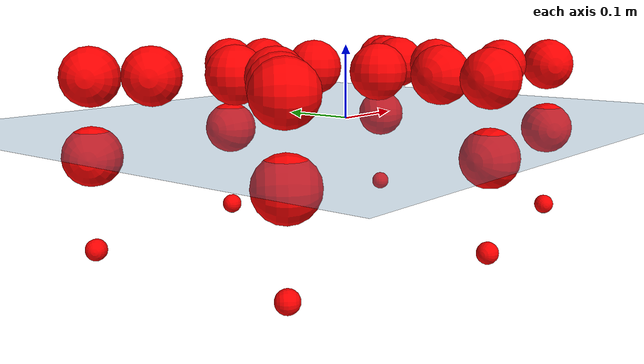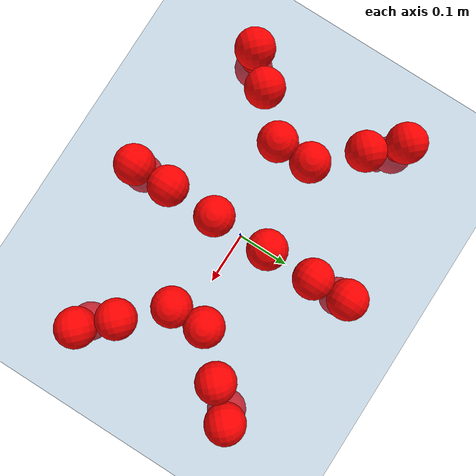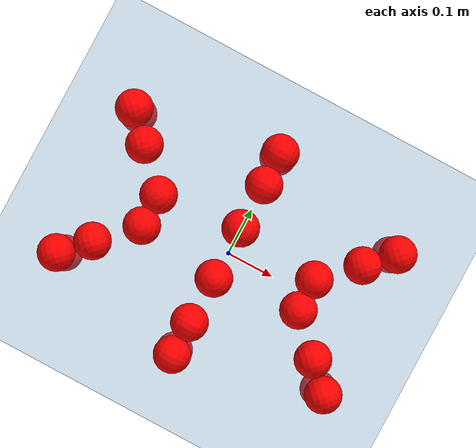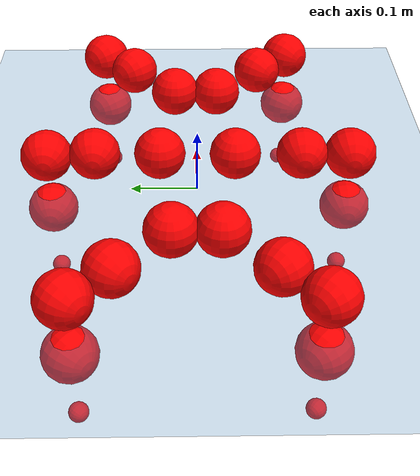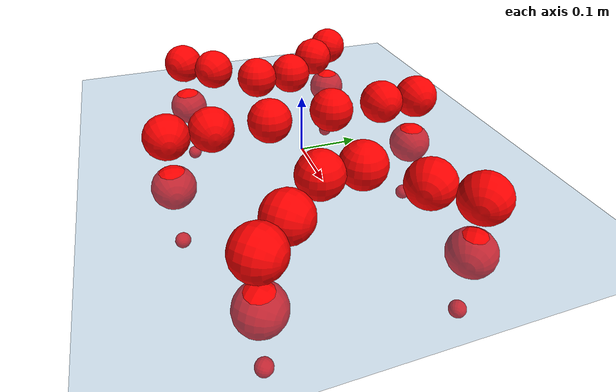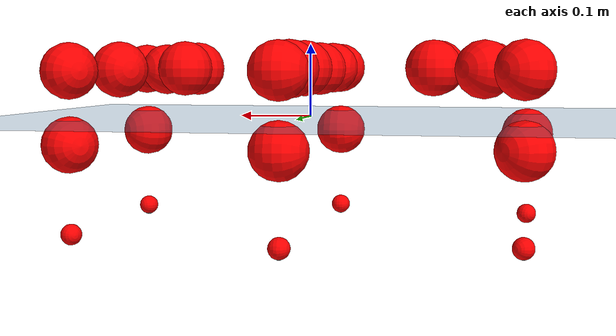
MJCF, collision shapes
<mujoco model="Golem">
  <compiler angle="radian" assetdir="assets" balanceinertia="true" inertiafromgeom="false"/>

  <option timestep="0.005" density="1.2" viscosity="2e-05"/>

  <size nkey="1"/>

  <visual>
    <quality shadowsize="8192"/>
    <map shadowclip="0.5"/>
  </visual>

  <default>
    <default class="/">
      <joint armature="0.01" damping="0.01" frictionloss="0.01"/>
      <geom contype="0" conaffinity="0" group="1" solref="-1000 -80"/>
      <site size="0.01 0.005 0.005" group="5"/>
      <general forcelimited="true" biastype="affine" gainprm="25" biasprm="0 -25 -0.5"/>
      <default class="visual">
        <geom type="mesh" group="2"/>
      </default>
      <default class="collision">
        <geom group="3"/>
      </default>
      <default class="foot">
        <geom size="0.01 0 0" condim="6" group="4" priority="1" solimp="0.015 1 0.01"/>
      </default>
      <default class="reward_collision_sphere">
        <geom group="5" rgba="1 0 0 1"/>
      </default>
    </default>
  </default>

  <asset>
    <texture type="skybox" colorspace="auto" name="//unnamed_texture_0" builtin="gradient" rgb1="0.95 0.95 0.95" rgb2="0.95 0.95 0.95" width="100" height="600"/>
    <texture type="2d" colorspace="auto" name="texplane" builtin="checker" rgb1="0.345 0.575 0.748" rgb2="0.345 0.575 0.748" markrgb="1 1 1" width="512" height="512"/>
    <material name="MatPlane" class="/" texture="texplane" texuniform="true" texrepeat="2 2" specular="0.9"/>
    <mesh name="body" class="/" file="body.stl" scale="0.001 0.001 0.001"/>
    <mesh name="coxa" class="/" file="coxa.stl" scale="0.001 0.001 0.001"/>
    <mesh name="femur" class="/" file="femur.stl" scale="0.001 0.001 0.001"/>
    <mesh name="tibia" class="/" file="tibia.stl" scale="0.001 0.001 0.001"/>
    <mesh name="tarsus" class="/" file="tarsus.stl" scale="0.001 0.001 0.001"/>
  </asset>

  <worldbody>
    <geom name="floor" class="/" size="100 100 0.125" type="plane" group="0" material="MatPlane"/>
    <light name="toplight_shadow" class="/" pos="0 0 5" dir="0.0990148 0.0990148 -0.990148" type="directional" ambient="0.04 0.04 0.04" diffuse="0.55 0.55 0.55" specular="0.12 0.12 0.12"/>
    <light name="toplight_fill" class="/" pos="0 0 5" dir="0.0990148 0.0990148 -0.990148" type="directional" castshadow="false" ambient="0.04 0.04 0.04" diffuse="0.3 0.3 0.3" specular="0.08 0.08 0.08"/>
    <body name="trunk" pos="-0.000883289 0.000881473 -0.000730466" quat="1 6.72626e-05 0.000129659 6.37651e-05">
      <inertial pos="0.00111715 -0.000955776 -0.00518189" quat="0.999999 0.00146814 0.000289268 -0.000665145" mass="3.14134" diaginertia="0.0169038 0.00142176 0.0125266"/>
      <joint name="//unnamed_joint_0" type="free"/>
      <geom name="//unnamed_geom_1" class="/" pos="0 0 0.0671192" quat="1 0 0 0" type="mesh" rgba="0.9 0.9 0.9 1" mesh="body"/>
      <site name="imu" class="/" pos="0.141414 0.00269423 0.102391" size="0.00944294"/>
      <camera name="track" class="/" pos="0 -1.35326 0" quat="0.707107 0.707107 0 0" mode="trackcom"/>
      <camera name="ego_camera" class="/" pos="0.143977 0 0.104874" quat="-0.5 -0.5 0.5 0.5"/>
      <body name="coxa_RR" pos="-0.197103 -0.0565267 0.0689591" quat="0.382803 0.000107069 7.75783e-05 -0.92383">
        <inertial pos="-0.000366773 -0.00136421 0.0018072" quat="0.99999 -0.00363755 -0.00127789 -0.00240209" mass="0.169479" diaginertia="0.0167556 0.00143876 0.0127049"/>
        <joint name="coxa_joint_RR" class="/" pos="0 0 0" axis="-0.00213456 -0.00173978 -0.999996" range="-3.13872 3.13503" armature="0.00950395" damping="0.00642356" frictionloss="0.00921589"/>
        <geom name="//unnamed_geom_2" class="/" type="mesh" rgba="0.2 0.2 0.2 1" mesh="coxa"/>
        <geom name="//unnamed_geom_3" class="reward_collision_sphere" size="0.0377718" pos="-0.0332254 0 0"/>
        <body name="femur_RR" pos="0.0676738 0.00091285 -0.00111818" quat="0.500029 -0.499904 0.500031 0.500035">
          <inertial pos="-0.000240264 0.000173746 0.000138473" quat="1 -0.000114605 0.000178837 0.000232038" mass="0.167128" diaginertia="0.0165403 0.00141094 0.0126073"/>
          <joint name="femur_joint_RR" class="/" pos="0 0 0" axis="-0.000627507 -0.000649963 -1" range="-3.12945 3.12281" armature="0.00959501" damping="0.00367648" frictionloss="0.00939689"/>
          <geom name="//unnamed_geom_4" class="/" type="mesh" rgba="0.9 0.9 0.9 1" mesh="femur"/>
          <geom name="//unnamed_geom_5" class="reward_collision_sphere" size="0.0377718"/>
          <body name="tibia_RR" pos="0.000433847 -0.074264 0.00125334" quat="3.01711e-05 1 -0.000261569 9.19294e-05">
            <inertial pos="-0.00101613 -0.000410975 -0.000138463" quat="0.999991 0.00172309 0.000576431 -0.00383758" mass="0.166451" diaginertia="0.0165422 0.00140388 0.0127869"/>
            <joint name="tibia_joint_RR" class="/" pos="0 0 0" axis="-0.00067352 0.000872195 0.999999" range="-3.12016 3.10348" armature="0.00928753" damping="0.00425003" frictionloss="0.00965368"/>
            <geom name="//unnamed_geom_6" class="/" type="mesh" rgba="0.2 0.2 0.2 1" mesh="tibia"/>
            <geom name="//unnamed_geom_7" class="reward_collision_sphere" size="0.0377718"/>
            <body name="tarsus_RR" pos="0.0975801 -0.00037395 -0.000853991" quat="1 -0.000142943 1.72264e-05 7.04255e-05">
              <inertial pos="0.0681378 0.00249734 -0.000452593" quat="0.499334 0.498639 0.504027 0.497977" mass="0.169612" diaginertia="0.0170302 0.0014423 0.0128282"/>
              <joint name="tarsus_joint_RR" class="/" pos="0 0 0" axis="-0.00857848 -0.00129997 0.999962" range="-3.11083 3.14495" armature="0.00906162" damping="0.0440827" frictionloss="0.00901325"/>
              <geom name="//unnamed_geom_8" class="/" type="mesh" rgba="0.9 0.9 0.9 1" mesh="tarsus"/>
              <geom name="foot_1" class="foot" size="0.00901341" pos="0.124042 0 0" quat="0 -0.707107 0 0.707107"/>
              <geom name="//unnamed_geom_10" class="reward_collision_sphere" size="0.0377718"/>
              <geom name="//unnamed_geom_11" class="reward_collision_sphere" size="0.0141644" pos="0.119058 0 0"/>
              <site name="foot_1" class="foot" pos="0.124042 0 0" quat="0 -0.707107 0 0.707107" size="0.00944294"/>
            </body>
          </body>
        </body>
      </body>
      <body name="coxa_RM" pos="-0.000979508 -0.0903046 0.0668757" quat="0.707124 6.79484e-05 5.84447e-06 -0.707089">
        <inertial pos="-0.000223936 -0.000863807 -0.000213929" quat="0.999999 0.000159996 -0.00126253 0.000385698" mass="0.168874" diaginertia="0.0166141 0.0014164 0.0126518"/>
        <joint name="coxa_joint_RM" class="/" pos="0 0 0" axis="-0.00137342 0.00492212 -0.999987" range="-3.14004 3.14743" armature="0.00944334" damping="0.00882441" frictionloss="0.00867042"/>
        <geom name="//unnamed_geom_12" class="/" type="mesh" rgba="0.2 0.2 0.2 1" mesh="coxa"/>
        <geom name="//unnamed_geom_13" class="reward_collision_sphere" size="0.0377718" pos="-0.0332254 0 0"/>
        <body name="femur_RM" pos="0.065027 -0.00134808 0.000619663" quat="0.500213 -0.499994 0.499916 0.499877">
          <inertial pos="-0.000265136 0.000507509 -1.0622e-05" quat="1 -0.000318125 0.000570155 7.46604e-05" mass="0.166721" diaginertia="0.0163703 0.00142198 0.0125763"/>
          <joint name="femur_joint_RM" class="/" pos="0 0 0" axis="0.00021981 0.000588818 -1" range="-3.14274 3.15638" armature="0.00920126" damping="0" frictionloss="0.00953637"/>
          <geom name="//unnamed_geom_14" class="/" type="mesh" rgba="0.9 0.9 0.9 1" mesh="femur"/>
          <geom name="//unnamed_geom_15" class="reward_collision_sphere" size="0.0377718"/>
          <body name="tibia_RM" pos="0.000760797 -0.0714457 -0.000141047" quat="3.61775e-05 1 -3.75039e-05 3.10081e-05">
            <inertial pos="-0.00140939 -0.00186443 -0.000878371" quat="0.999974 0.00373216 8.51696e-06 0.00624754" mass="0.167878" diaginertia="0.0166976 0.0014174 0.0124636"/>
            <joint name="tibia_joint_RM" class="/" pos="0 0 0" axis="0.000609832 8.32365e-05 1" range="-3.13971 3.11882" armature="0.00900726" damping="0.00996001" frictionloss="0.00907685"/>
            <geom name="//unnamed_geom_16" class="/" type="mesh" rgba="0.2 0.2 0.2 1" mesh="tibia"/>
            <geom name="//unnamed_geom_17" class="reward_collision_sphere" size="0.0377718"/>
            <body name="tarsus_RM" pos="0.0976349 0.000936487 0.000116114" quat="1 2.54196e-05 -7.97468e-06 -8.60383e-05">
              <inertial pos="0.0666487 -0.000107659 -8.13343e-05" quat="0.500786 0.49879 0.498963 0.501456" mass="0.167473" diaginertia="0.0163691 0.00140306 0.0126257"/>
              <joint name="tarsus_joint_RM" class="/" pos="0 0 0" axis="-0.000345861 0.000401251 1" range="-3.13939 3.14406" armature="0.00896822" damping="0.00691963" frictionloss="0.00968482"/>
              <geom name="//unnamed_geom_18" class="/" type="mesh" rgba="0.9 0.9 0.9 1" mesh="tarsus"/>
              <geom name="foot_2" class="foot" size="0.00951182" pos="0.124042 0 0" quat="0 -0.707107 0 0.707107"/>
              <geom name="//unnamed_geom_20" class="reward_collision_sphere" size="0.0377718"/>
              <geom name="//unnamed_geom_21" class="reward_collision_sphere" size="0.0141644" pos="0.119058 0 0"/>
              <site name="foot_2" class="foot" pos="0.124042 0 0" quat="0 -0.707107 0 0.707107" size="0.00944294"/>
            </body>
          </body>
        </body>
      </body>
      <body name="coxa_RF" pos="0.197611 -0.0573543 0.0666838" quat="0.923948 7.93345e-05 -0.000184399 -0.382518">
        <inertial pos="0.000820122 -2.01442e-05 4.42433e-05" quat="0.999997 0.0015996 -0.00192825 0.000608505" mass="0.169173" diaginertia="0.0169599 0.00142351 0.0125943"/>
        <joint name="coxa_joint_RF" class="/" pos="0 0 0" axis="-0.000688092 0.000906817 -0.999999" stiffness="0.000841304" range="-3.12483 3.12725" armature="0.00991493" damping="0.00804889" frictionloss="0.00925101"/>
        <geom name="//unnamed_geom_22" class="/" type="mesh" rgba="0.2 0.2 0.2 1" mesh="coxa"/>
        <geom name="//unnamed_geom_23" class="reward_collision_sphere" size="0.0377718" pos="-0.0332254 0 0"/>
        <body name="femur_RF" pos="0.0669022 -0.000445391 -0.00155721" quat="0.500143 -0.499811 0.50011 0.499936">
          <inertial pos="-0.000533338 -0.000429867 6.59734e-06" quat="0.999998 -0.00123734 -0.00047771 0.00171783" mass="0.167986" diaginertia="0.016752 0.00143781 0.0126232"/>
          <joint name="femur_joint_RF" class="/" pos="0 0 0" axis="0.00104546 -0.000790946 -0.999999" range="-3.12666 3.13604" armature="0.00923999" damping="0" frictionloss="0.00905424"/>
          <geom name="//unnamed_geom_24" class="/" type="mesh" rgba="0.9 0.9 0.9 1" mesh="femur"/>
          <geom name="//unnamed_geom_25" class="reward_collision_sphere" size="0.0377718"/>
          <body name="tibia_RF" pos="-0.000258235 -0.0723535 -0.00110863" quat="-8.15749e-05 1 -3.89356e-05 5.03217e-05">
            <inertial pos="-0.000731933 -0.000168726 -0.000441258" quat="0.999997 -0.00190195 0.000646614 0.00113118" mass="0.168894" diaginertia="0.0170487 0.00143512 0.0127341"/>
            <joint name="tibia_joint_RF" class="/" pos="0 0 0" axis="0.000345575 -0.000336412 1" range="-3.12838 3.13664" armature="0.00903925" damping="0.0129325" frictionloss="0.00934044"/>
            <geom name="//unnamed_geom_26" class="/" type="mesh" rgba="0.2 0.2 0.2 1" mesh="tibia"/>
            <geom name="//unnamed_geom_27" class="reward_collision_sphere" size="0.0377718"/>
            <body name="tarsus_RF" pos="0.0964181 0.000697222 0.00133221" quat="1 -9.25435e-05 0.000527955 0.000336636">
              <inertial pos="0.0664461 -0.00109339 4.61792e-05" quat="0.49676 0.499565 0.506834 0.496774" mass="0.16786" diaginertia="0.0168532 0.00138884 0.0126497"/>
              <joint name="tarsus_joint_RF" class="/" pos="0 0 0" axis="-0.000943337 0.00234959 0.999997" range="-3.11532 3.12825" armature="0.0102874" damping="0" frictionloss="0.00940214"/>
              <geom name="//unnamed_geom_28" class="/" type="mesh" rgba="0.9 0.9 0.9 1" mesh="tarsus"/>
              <geom name="foot_3" class="foot" size="0.00971138" pos="0.124042 0 0" quat="0 -0.707107 0 0.707107"/>
              <geom name="//unnamed_geom_30" class="reward_collision_sphere" size="0.0377718"/>
              <geom name="//unnamed_geom_31" class="reward_collision_sphere" size="0.0141644" pos="0.119058 0 0"/>
              <site name="foot_3" class="foot" pos="0.124042 0 0" quat="0 -0.707107 0 0.707107" size="0.00944294"/>
            </body>
          </body>
        </body>
      </body>
      <body name="coxa_LR" pos="-0.196612 0.0587458 0.0687129" quat="0.382679 0.000478546 -0.00033115 0.923881">
        <inertial pos="0.000689406 -0.00175073 -0.000332258" quat="1 0.000416195 -2.78033e-05 -0.000752045" mass="0.166077" diaginertia="0.0164668 0.00141367 0.0124194"/>
        <joint name="coxa_joint_LR" class="/" pos="0 0 0" axis="0.00130173 0.00255815 -0.999996" range="-3.11966 3.16313" armature="0.00898628" damping="0.00766508" frictionloss="0.00922831"/>
        <geom name="//unnamed_geom_32" class="/" type="mesh" rgba="0.2 0.2 0.2 1" mesh="coxa"/>
        <geom name="//unnamed_geom_33" class="reward_collision_sphere" size="0.0377718" pos="-0.0332254 0 0"/>
        <body name="femur_LR" pos="0.0688668 -0.00175757 -0.00119784" quat="0.499973 -0.499904 0.499985 0.500138">
          <inertial pos="-0.000714329 0.000103498 -0.000194749" quat="0.999981 0.00462317 -0.000689904 0.00392144" mass="0.169065" diaginertia="0.0165949 0.00140997 0.0128866"/>
          <joint name="femur_joint_LR" class="/" pos="0 0 0" axis="0.00282383 0.000978467 0.999996" range="-3.1068 3.13528" armature="0.00911639" damping="0.00592479" frictionloss="0.00919874"/>
          <geom name="//unnamed_geom_34" class="/" type="mesh" rgba="0.9 0.9 0.9 1" mesh="femur"/>
          <geom name="//unnamed_geom_35" class="reward_collision_sphere" size="0.0377718"/>
          <body name="tibia_LR" pos="0.000250881 -0.0742463 -0.00161867" quat="0.000153038 1 0.000459172 -0.000208322">
            <inertial pos="-0.000541206 -0.00124142 0.000194334" quat="0.999993 -0.00164312 0.00225281 -0.00248285" mass="0.167779" diaginertia="0.016498 0.00139561 0.0126334"/>
            <joint name="tibia_joint_LR" class="/" pos="0 0 0" axis="-0.00226797 0.00159376 -0.999996" range="-3.14328 3.12264" armature="0.0097814" damping="0" frictionloss="0.00913547"/>
            <geom name="//unnamed_geom_36" class="/" type="mesh" rgba="0.2 0.2 0.2 1" mesh="tibia"/>
            <geom name="//unnamed_geom_37" class="reward_collision_sphere" size="0.0377718"/>
            <body name="tarsus_LR" pos="0.0984231 0.000927158 0.0003847" quat="1 0.00024743 7.01845e-05 -9.20792e-05">
              <inertial pos="0.0666212 0.000104773 0.000213188" quat="0.49898 0.500114 0.498705 0.502194" mass="0.165887" diaginertia="0.0165232 0.00140743 0.0125312"/>
              <joint name="tarsus_joint_LR" class="/" pos="0 0 0" axis="-0.00312709 0.000979897 -0.999995" range="-3.15204 3.13629" armature="0.00942076" damping="0.0280977" frictionloss="0.00904555"/>
              <geom name="//unnamed_geom_38" class="/" type="mesh" rgba="0.9 0.9 0.9 1" mesh="tarsus"/>
              <geom name="foot_4" class="foot" size="0.00940527" pos="0.124042 0 0" quat="0.707107 0 -0.707107 0"/>
              <geom name="//unnamed_geom_40" class="reward_collision_sphere" size="0.0377718"/>
              <geom name="//unnamed_geom_41" class="reward_collision_sphere" size="0.0141644" pos="0.119058 0 0"/>
              <site name="foot_4" class="foot" pos="0.124042 0 0" quat="0.707107 0 -0.707107 0" size="0.00944294"/>
            </body>
          </body>
        </body>
      </body>
      <body name="coxa_LM" pos="-0.00116418 0.0871148 0.0682877" quat="0.707009 0.000282781 0.000460255 0.707204">
        <inertial pos="-3.85551e-05 0.000413002 0.00109731" quat="1 -0.000861862 -0.000122333 -0.000225322" mass="0.17043" diaginertia="0.0166601 0.00140312 0.012914"/>
        <joint name="coxa_joint_LM" class="/" pos="0 0 0" axis="0.00138528 0.000492179 -0.999999" stiffness="0.00188838" range="-3.13893 3.14036" armature="0.00995586" damping="0.00398619" frictionloss="0.0097062"/>
        <geom name="//unnamed_geom_42" class="/" type="mesh" rgba="0.2 0.2 0.2 1" mesh="coxa"/>
        <geom name="//unnamed_geom_43" class="reward_collision_sphere" size="0.0377718" pos="-0.0332254 0 0"/>
        <body name="femur_LM" pos="0.0625645 -0.000155436 0.000110928" quat="0.49996 -0.499929 0.499954 0.500157">
          <inertial pos="0.000129327 -0.00102598 0.000842009" quat="0.999999 0.00127667 3.08567e-05 -0.000189698" mass="0.168173" diaginertia="0.0164513 0.00141581 0.01282"/>
          <joint name="femur_joint_LM" class="/" pos="0 0 0" axis="0.00144838 0.00696509 0.999975" range="-3.12828 3.1381" armature="0.00894273" damping="0.00644574" frictionloss="0.00923333"/>
          <geom name="//unnamed_geom_44" class="/" type="mesh" rgba="0.9 0.9 0.9 1" mesh="femur"/>
          <geom name="//unnamed_geom_45" class="reward_collision_sphere" size="0.0377718"/>
          <body name="tibia_LM" pos="0.00146576 -0.0704627 0.00154272" quat="6.79305e-05 1 -4.87626e-05 0.000144299">
            <inertial pos="0.000776449 -0.00186903 0.00164271" quat="0.999966 0.00240648 -0.0028825 0.00737954" mass="0.166084" diaginertia="0.0168194 0.00140018 0.0126641"/>
            <joint name="tibia_joint_LM" class="/" pos="0 0 0" axis="7.09709e-05 -0.000889523 -1" range="-3.13402 3.12156" armature="0.00917504" damping="0.00428506" frictionloss="0.00934609"/>
            <geom name="//unnamed_geom_46" class="/" type="mesh" rgba="0.2 0.2 0.2 1" mesh="tibia"/>
            <geom name="//unnamed_geom_47" class="reward_collision_sphere" size="0.0377718"/>
            <body name="tarsus_LM" pos="0.0977758 6.70258e-05 -7.72846e-05" quat="1 -0.00028057 -3.15528e-05 0.000242903">
              <inertial pos="0.0677588 7.22933e-05 -0.000457494" quat="0.502239 0.49675 0.496762 0.504207" mass="0.170959" diaginertia="0.0167455 0.00142829 0.012873"/>
              <joint name="tarsus_joint_LM" class="/" pos="0 0 0" axis="-0.000248392 -0.00266667 -0.999996" range="-3.13696 3.12382" armature="0.00982351" damping="0" frictionloss="0.00948764"/>
              <geom name="//unnamed_geom_48" class="/" type="mesh" rgba="0.9 0.9 0.9 1" mesh="tarsus"/>
              <geom name="foot_5" class="foot" size="0.00957591" pos="0.124042 0 0" quat="0.707107 0 -0.707107 0"/>
              <geom name="//unnamed_geom_50" class="reward_collision_sphere" size="0.0377718"/>
              <geom name="//unnamed_geom_51" class="reward_collision_sphere" size="0.0141644" pos="0.119058 0 0"/>
              <site name="foot_5" class="foot" pos="0.124042 0 0" quat="0.707107 0 -0.707107 0" size="0.00944294"/>
            </body>
          </body>
        </body>
      </body>
      <body name="coxa_LF" pos="0.196571 0.0567042 0.0676419" quat="0.924037 0.000220382 9.05022e-06 0.382304">
        <inertial pos="-0.00040138 0.000214965 -0.000686291" quat="0.999966 -0.00642248 0.00454009 -0.00235088" mass="0.172076" diaginertia="0.0169566 0.00144544 0.0125174"/>
        <joint name="coxa_joint_LF" class="/" pos="0 0 0" axis="-0.000712813 -0.00119211 -0.999999" range="-3.13812 3.13482" armature="0.00946537" damping="0.00352204" frictionloss="0.00960258"/>
        <geom name="//unnamed_geom_52" class="/" type="mesh" rgba="0.2 0.2 0.2 1" mesh="coxa"/>
        <geom name="//unnamed_geom_53" class="reward_collision_sphere" size="0.0377718" pos="-0.0332254 0 0"/>
        <body name="femur_LF" pos="0.0652774 -0.000560462 -0.00107369" quat="0.500091 -0.499809 0.499907 0.500193">
          <inertial pos="0.000822854 0.000781016 0.00114154" quat="0.999993 0.00336208 0.00124585 0.00106515" mass="0.166596" diaginertia="0.0165701 0.00141508 0.0124754"/>
          <joint name="femur_joint_LF" class="/" pos="0 0 0" axis="-0.00285495 0.00597467 0.999978" range="-3.14362 3.17254" armature="0.0092673" damping="0" frictionloss="0.00939972"/>
          <geom name="//unnamed_geom_54" class="/" type="mesh" rgba="0.9 0.9 0.9 1" mesh="femur"/>
          <geom name="//unnamed_geom_55" class="reward_collision_sphere" size="0.0377718"/>
          <body name="tibia_LF" pos="0.00135519 -0.0726052 0.00057734" quat="0.000163765 1 3.11399e-05 3.87868e-05">
            <inertial pos="-0.000262514 -0.000347266 0.000181945" quat="0.999999 -0.000178857 0.000270842 -0.0013448" mass="0.168212" diaginertia="0.01668 0.00141187 0.0126489"/>
            <joint name="tibia_joint_LF" class="/" pos="0 0 0" axis="-0.00122238 0.00139388 -0.999998" range="-3.12163 3.13091" armature="0.0089444" damping="0.00114163" frictionloss="0.00917918"/>
            <geom name="//unnamed_geom_56" class="/" type="mesh" rgba="0.2 0.2 0.2 1" mesh="tibia"/>
            <geom name="//unnamed_geom_57" class="reward_collision_sphere" size="0.0377718"/>
            <body name="tarsus_LF" pos="0.0975561 -0.000127961 0.00059761" quat="1 -0.000220805 -0.000195883 -0.000377152">
              <inertial pos="0.0670593 -0.000897635 -0.000168307" quat="0.499932 0.499762 0.49985 0.500455" mass="0.167253" diaginertia="0.0167964 0.00142732 0.0126556"/>
              <joint name="tarsus_joint_LF" class="/" pos="0 0 0" axis="0.00474736 0.00434253 -0.999979" stiffness="0.0245661" range="-3.1588 3.16163" armature="0.00939505" damping="0.000954431" frictionloss="0.00942029"/>
              <geom name="//unnamed_geom_58" class="/" type="mesh" rgba="0.9 0.9 0.9 1" mesh="tarsus"/>
              <geom name="foot_6" class="foot" size="0.0091562" pos="0.124042 0 0" quat="0.707107 0 -0.707107 0"/>
              <geom name="//unnamed_geom_60" class="reward_collision_sphere" size="0.0377718"/>
              <geom name="//unnamed_geom_61" class="reward_collision_sphere" size="0.0141644" pos="0.119058 0 0"/>
              <site name="foot_6" class="foot" pos="0.124042 0 0" quat="0.707107 0 -0.707107 0" size="0.00944294"/>
            </body>
          </body>
        </body>
      </body>
    </body>
  </worldbody>

  <contact>
    <pair class="/" geom1="floor" geom2="foot_1" name="//unnamed_contact_0"/>
    <pair class="/" geom1="floor" geom2="foot_2" name="//unnamed_contact_1"/>
    <pair class="/" geom1="floor" geom2="foot_3" name="//unnamed_contact_2"/>
    <pair class="/" geom1="floor" geom2="foot_4" name="//unnamed_contact_3"/>
    <pair class="/" geom1="floor" geom2="foot_5" name="//unnamed_contact_4"/>
    <pair class="/" geom1="floor" geom2="foot_6" name="//unnamed_contact_5"/>
  </contact>

  <actuator>
    <general name="coxa_joint_RR" class="/" joint="coxa_joint_RR" forcerange="-6.65446 6.65446" gainprm="22.9389" biasprm="0 -22.9389 -0.483686"/>
    <general name="femur_joint_RR" class="/" joint="femur_joint_RR" forcerange="-7.13547 7.13547" gainprm="22.9389" biasprm="0 -22.9389 -0.483686"/>
    <general name="tibia_joint_RR" class="/" joint="tibia_joint_RR" forcerange="-6.54398 6.54398" gainprm="22.9389" biasprm="0 -22.9389 -0.483686"/>
    <general name="tarsus_joint_RR" class="/" joint="tarsus_joint_RR" forcerange="-7.04389 7.04389" gainprm="22.9389" biasprm="0 -22.9389 -0.483686"/>
    <general name="coxa_joint_RM" class="/" joint="coxa_joint_RM" forcerange="-6.91058 6.91058" gainprm="22.9389" biasprm="0 -22.9389 -0.483686"/>
    <general name="femur_joint_RM" class="/" joint="femur_joint_RM" forcerange="-6.87208 6.87208" gainprm="22.9389" biasprm="0 -22.9389 -0.483686"/>
    <general name="tibia_joint_RM" class="/" joint="tibia_joint_RM" forcerange="-6.46873 6.46873" gainprm="22.9389" biasprm="0 -22.9389 -0.483686"/>
    <general name="tarsus_joint_RM" class="/" joint="tarsus_joint_RM" forcerange="-7.01871 7.01871" gainprm="22.9389" biasprm="0 -22.9389 -0.483686"/>
    <general name="coxa_joint_RF" class="/" joint="coxa_joint_RF" forcerange="-6.8942 6.8942" gainprm="22.9389" biasprm="0 -22.9389 -0.483686"/>
    <general name="femur_joint_RF" class="/" joint="femur_joint_RF" forcerange="-7.32336 7.32336" gainprm="22.9389" biasprm="0 -22.9389 -0.483686"/>
    <general name="tibia_joint_RF" class="/" joint="tibia_joint_RF" forcerange="-6.65515 6.65515" gainprm="22.9389" biasprm="0 -22.9389 -0.483686"/>
    <general name="tarsus_joint_RF" class="/" joint="tarsus_joint_RF" forcerange="-7.31393 7.31393" gainprm="22.9389" biasprm="0 -22.9389 -0.483686"/>
    <general name="coxa_joint_LR" class="/" joint="coxa_joint_LR" forcerange="-6.78815 6.78815" gainprm="22.9389" biasprm="0 -22.9389 -0.483686"/>
    <general name="femur_joint_LR" class="/" joint="femur_joint_LR" forcerange="-6.6777 6.6777" gainprm="22.9389" biasprm="0 -22.9389 -0.483686"/>
    <general name="tibia_joint_LR" class="/" joint="tibia_joint_LR" forcerange="-6.70138 6.70138" gainprm="22.9389" biasprm="0 -22.9389 -0.483686"/>
    <general name="tarsus_joint_LR" class="/" joint="tarsus_joint_LR" forcerange="-6.87474 6.87474" gainprm="22.9389" biasprm="0 -22.9389 -0.483686"/>
    <general name="coxa_joint_LM" class="/" joint="coxa_joint_LM" forcerange="-6.64606 6.64606" gainprm="22.9389" biasprm="0 -22.9389 -0.483686"/>
    <general name="femur_joint_LM" class="/" joint="femur_joint_LM" forcerange="-6.9202 6.9202" gainprm="22.9389" biasprm="0 -22.9389 -0.483686"/>
    <general name="tibia_joint_LM" class="/" joint="tibia_joint_LM" forcerange="-6.60585 6.60585" gainprm="22.9389" biasprm="0 -22.9389 -0.483686"/>
    <general name="tarsus_joint_LM" class="/" joint="tarsus_joint_LM" forcerange="-6.9722 6.9722" gainprm="22.9389" biasprm="0 -22.9389 -0.483686"/>
    <general name="coxa_joint_LF" class="/" joint="coxa_joint_LF" forcerange="-6.69954 6.69954" gainprm="22.9389" biasprm="0 -22.9389 -0.483686"/>
    <general name="femur_joint_LF" class="/" joint="femur_joint_LF" forcerange="-6.7454 6.7454" gainprm="22.9389" biasprm="0 -22.9389 -0.483686"/>
    <general name="tibia_joint_LF" class="/" joint="tibia_joint_LF" forcerange="-6.8177 6.8177" gainprm="22.9389" biasprm="0 -22.9389 -0.483686"/>
    <general name="tarsus_joint_LF" class="/" joint="tarsus_joint_LF" forcerange="-6.87972 6.87972" gainprm="22.9389" biasprm="0 -22.9389 -0.483686"/>
  </actuator>

  <sensor>
    <gyro site="imu" name="imu_angular_velocity"/>
    <velocimeter site="imu" name="imu_linear_velocity"/>
    <framelinvel objtype="site" objname="foot_1" name="foot_1_global_linear_velocity"/>
    <framelinvel objtype="site" objname="foot_2" name="foot_2_global_linear_velocity"/>
    <framelinvel objtype="site" objname="foot_3" name="foot_3_global_linear_velocity"/>
    <framelinvel objtype="site" objname="foot_4" name="foot_4_global_linear_velocity"/>
    <framelinvel objtype="site" objname="foot_5" name="foot_5_global_linear_velocity"/>
    <framelinvel objtype="site" objname="foot_6" name="foot_6_global_linear_velocity"/>
  </sensor>

  <keyframe>
    <key name="home" qpos="0 0 0.1457 1 0 0 0 0 0 0 0 0 0 0 0 0 0 0 0 0 0 0 0 0 0 0 0 0 0 0 0"/>
  </keyframe>
</mujoco>
